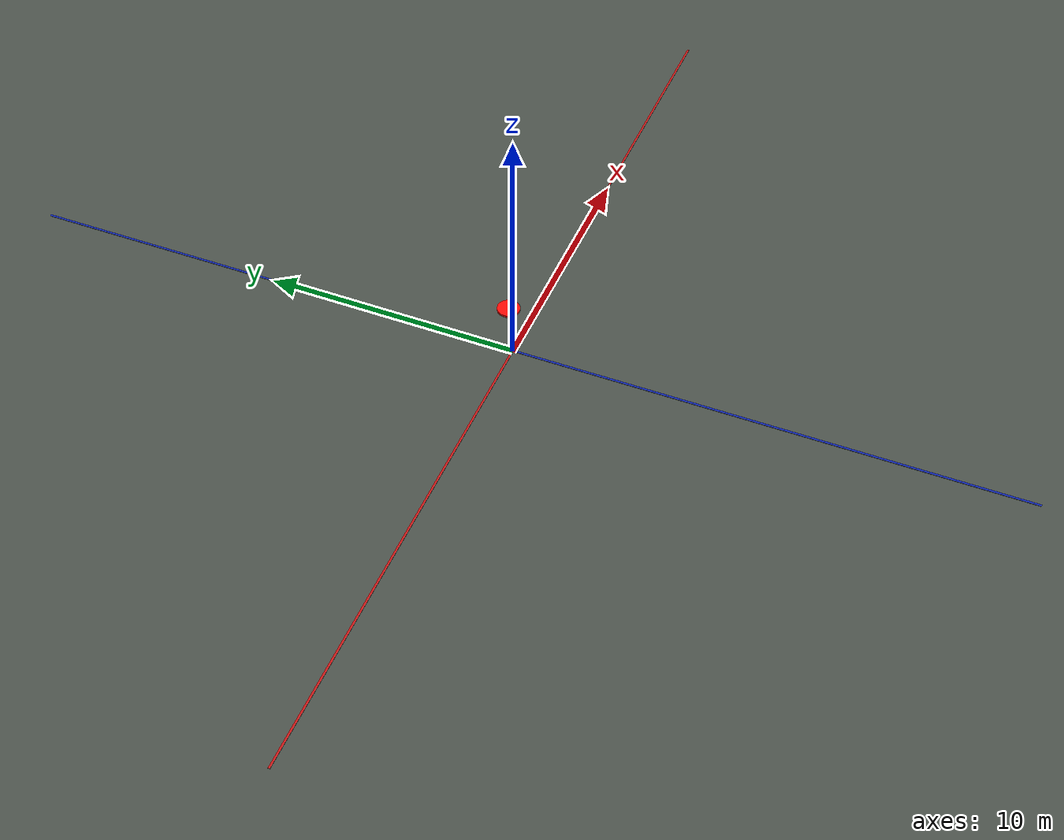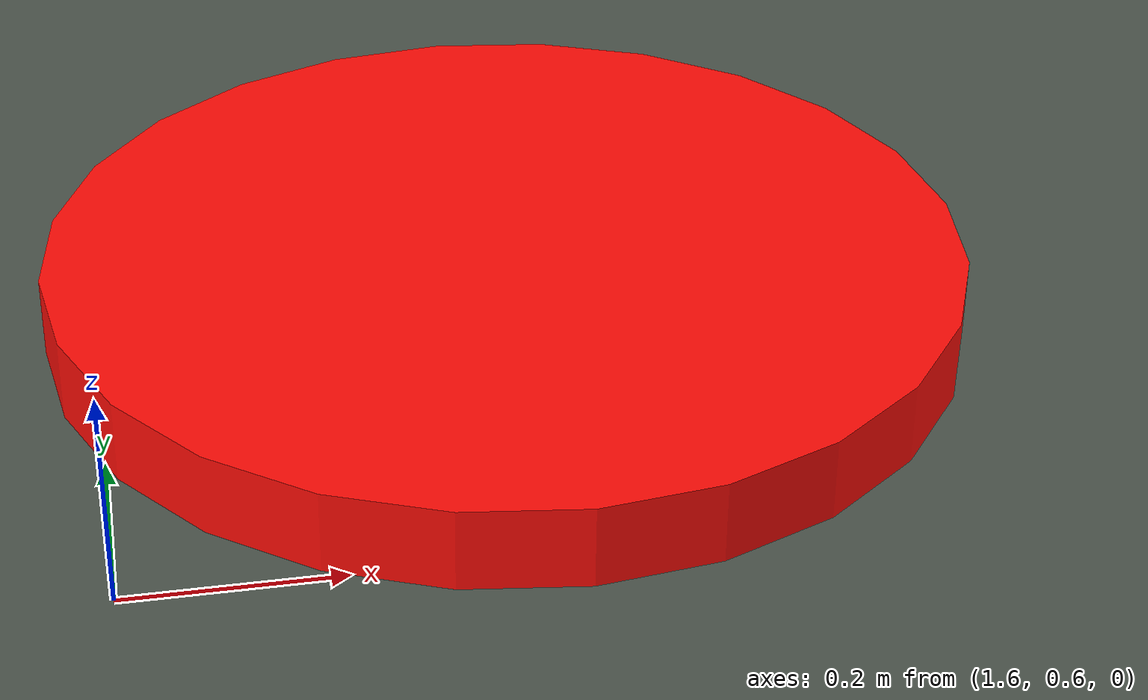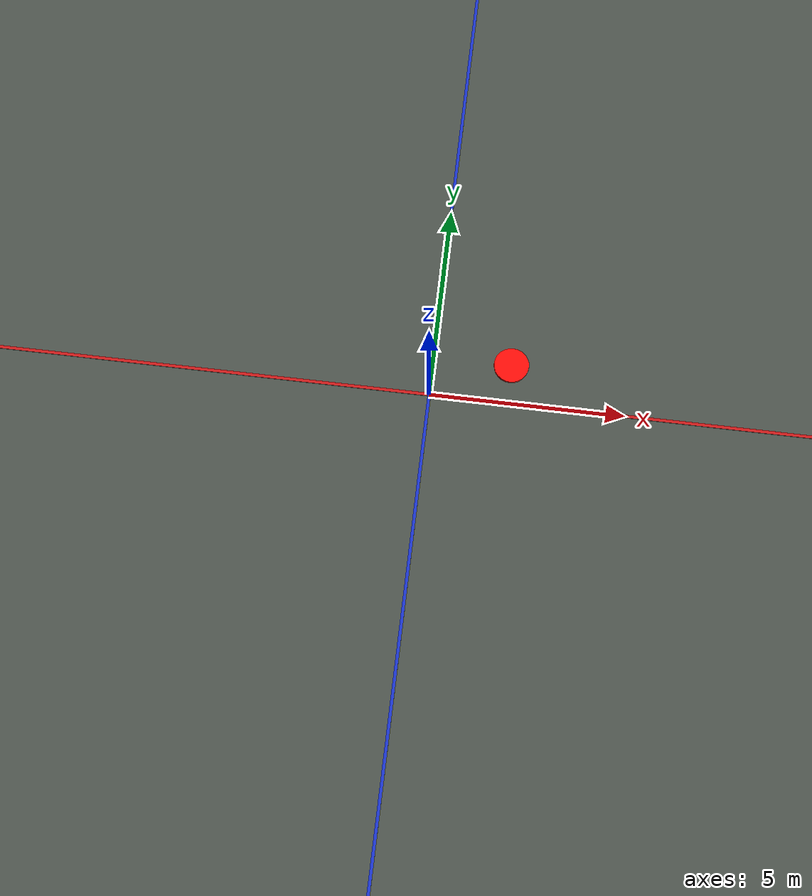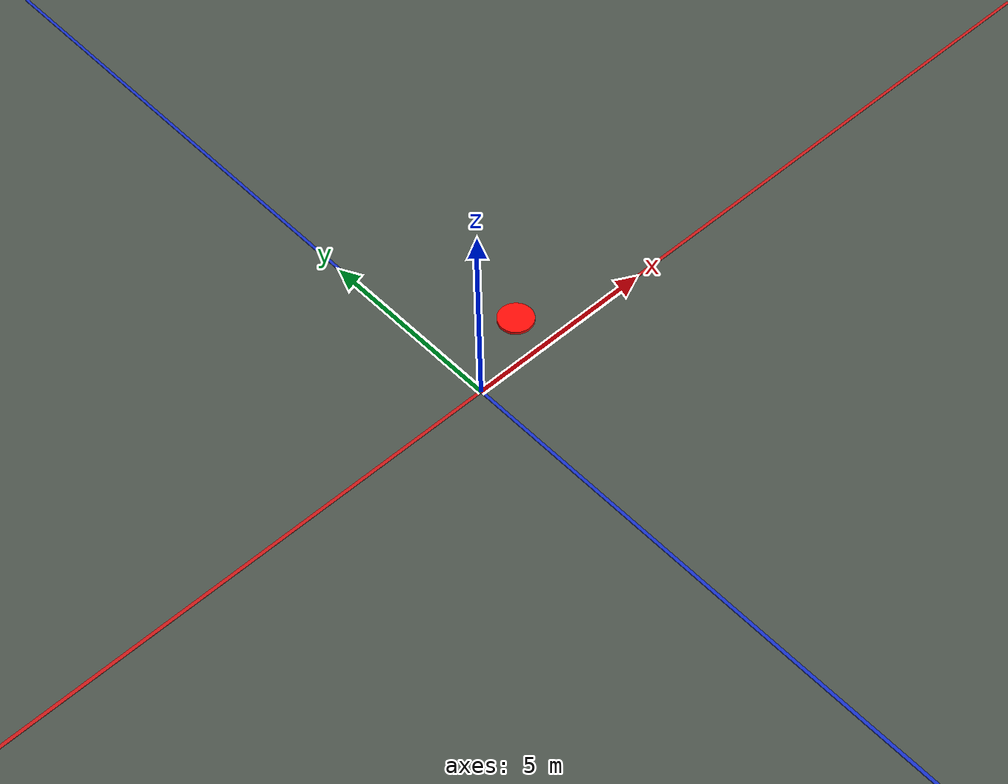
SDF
<?xml version="1.0" ?>
<sdf version="1.9">
  <world name="first_ring_px4_target_world">
    <gravity>0 0 -9.81</gravity>
    <atmosphere type="adiabatic"/>

    <plugin filename="gz-sim-physics-system" name="gz::sim::systems::Physics"/>
    <plugin filename="gz-sim-user-commands-system" name="gz::sim::systems::UserCommands"/>
    <plugin filename="gz-sim-scene-broadcaster-system" name="gz::sim::systems::SceneBroadcaster"/>
    <plugin filename="gz-sim-sensors-system" name="gz::sim::systems::Sensors">
      <render_engine>ogre2</render_engine>
    </plugin>

    <light name="sun" type="directional">
      <pose>0 0 40 0 0 0</pose>
      <cast_shadows>true</cast_shadows>
      <diffuse>0.85 0.85 0.82 1</diffuse>
      <specular>0.2 0.2 0.2 1</specular>
      <direction>-0.35 0.15 -1</direction>
    </light>

    <model name="ground_plane">
      <static>true</static>
      <link name="ground_link">
        <collision name="collision">
          <geometry>
            <plane>
              <normal>0 0 1</normal>
              <size>80 80</size>
            </plane>
          </geometry>
        </collision>
        <visual name="visual">
          <geometry>
            <plane>
              <normal>0 0 1</normal>
              <size>80 80</size>
            </plane>
          </geometry>
          <material>
            <ambient>0.30 0.33 0.30 1</ambient>
            <diffuse>0.30 0.33 0.30 1</diffuse>
          </material>
        </visual>
      </link>
    </model>

    <model name="field_reference_grid">
      <static>true</static>
      <link name="grid_link">
        <visual name="x_axis">
          <pose>0 0 0.011 0 0 0</pose>
          <geometry>
            <box>
              <size>40 0.08 0.02</size>
            </box>
          </geometry>
          <material>
            <ambient>0.8 0.1 0.1 1</ambient>
            <diffuse>0.8 0.1 0.1 1</diffuse>
          </material>
        </visual>
        <visual name="y_axis">
          <pose>0 0 0.012 0 0 0</pose>
          <geometry>
            <box>
              <size>0.08 40 0.02</size>
            </box>
          </geometry>
          <material>
            <ambient>0.1 0.2 0.8 1</ambient>
            <diffuse>0.1 0.2 0.8 1</diffuse>
          </material>
        </visual>
      </link>
    </model>

    <model name="ground_target">
      <static>true</static>
      <pose>2 1 0.04 0 0 0</pose>
      <link name="target_link">
        <collision name="collision">
          <geometry>
            <cylinder>
              <radius>0.45</radius>
              <length>0.08</length>
            </cylinder>
          </geometry>
        </collision>
        <visual name="visual">
          <geometry>
            <cylinder>
              <radius>0.45</radius>
              <length>0.08</length>
            </cylinder>
          </geometry>
          <material>
            <ambient>1.0 0.05 0.03 1</ambient>
            <diffuse>1.0 0.05 0.03 1</diffuse>
            <specular>0.2 0.02 0.02 1</specular>
          </material>
        </visual>
      </link>
    </model>
  </world>
</sdf>
